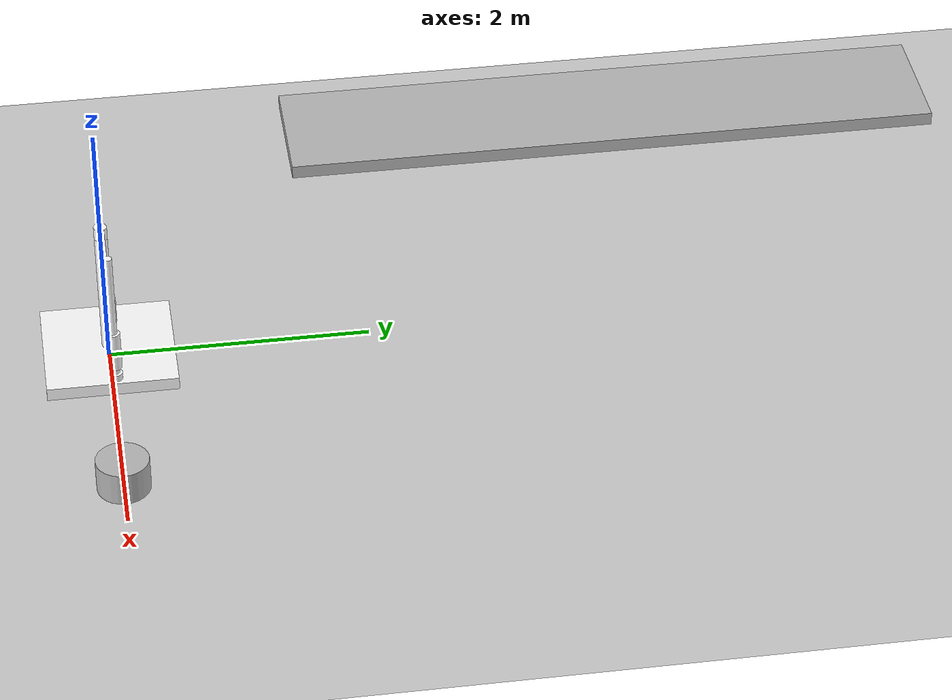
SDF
<sdf version="1.5">
 <world name="default">
  <include><uri>model://sun</uri></include>
  <include><uri>model://ground_plane</uri></include>
  <include><uri>model://simple_arm_vacuum_gripper</uri></include>
  <include><uri>model://conveyor_belt</uri><pose>-1.0 1.5 1.2 0 0 0</pose></include>
  <model name="cylinder">
   <pose>1.6 0 0 0 0 0</pose>
   <link name="base">
    <inertial>
     <inertia><ixx>0.003083</ixx><ixy>0</ixy><ixz>0</ixz><iyy>0.003083</iyy><iyz>0</iyz><izz>0.002</izz></inertia>
     <mass>0.1</mass>
    </inertial>
    <visual name="cylinder_visual">
     <geometry><cylinder><radius>0.2</radius><length>0.5</length></cylinder></geometry>
    </visual>
    <collision name="cylinder_collision">
     <geometry><cylinder><radius>0.2</radius><length>0.5</length></cylinder></geometry>
    </collision>
   </link>
  </model>
  <plugin filename="libPopulationPlugin.so" name="populate_conveyor">
   <loop_forever>true</loop_forever>
   <frame>conveyor_belt</frame>
   <object_sequence>
    <object><time>8.0</time><type>coke_can</type><pose>0.2 2.1 0.5 0 0 0</pose></object>
    <object><time>4.0</time><type>cordless_drill/</type><pose>-0.2 .1 0.5 0 0 1</pose></object>
    <object><time>12.0</time><type>beer</type><pose>0.2 2.1 0.5 0 0 0</pose></object>
   </object_sequence>
  </plugin>
  <plugin filename="libROSAriacTaskManagerPlugin.so" name="task_manager">
   <robot_namespace>ariac_task_manager</robot_namespace>
   <conveyor_activation_topic>~/conveyor/control</conveyor_activation_topic>
   <goals_topic>goals</goals_topic>
   <goal>
    <time>5.0</time>
    <kit>
     <object><type>coke_can</type><pose>0 2.5 0.2 0 0 0</pose></object>
     <object><type>cordless_drill/</type><pose>0 2.5 0.2 0 0 0</pose></object>
     <object><type>beer</type><pose>0 2.5 0.2 0 0 0</pose></object>
    </kit>
    <kit>
     <object><type>coke_can</type><pose>-1 2.5 0.2 0 0 0</pose></object>
     <object><type>cordless_drill/</type><pose>-1 2.5 0.2 0 0 0</pose></object>
     <object><type>beer</type><pose>-1 2.5 0.2 0 0 0</pose></object>
    </kit>
   </goal>
  </plugin>
 </world>
</sdf>

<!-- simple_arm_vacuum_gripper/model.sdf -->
<sdf version="1.5">
  <model name="simple_arm_vacuum_gripper">

      <!-- The arm -->
      <include>
        <uri>model://simple_arm</uri>
      </include>

      <!-- The vacuum gripper -->
      <model name="vacuum_gripper">
        <include>
          <uri>model://vacuum_gripper</uri>
          <pose>1.6 0 0.99 0 0 0</pose>
        </include>

        <!-- Load the plugin to control the vacuum gripper-->
        <plugin name="ros_vacuum_gripper" filename='libROSVacuumGripperPlugin.so'>
          <grasp_check>
            <detach_steps>40</detach_steps>
            <attach_steps>2</attach_steps>
            <min_contact_count>1</min_contact_count>
          </grasp_check>
          <suction_cup_link>
            simple_arm_vacuum_gripper::vacuum_gripper::vacuum_gripper::suction_cup
          </suction_cup_link>

          <!-- The gripper will drop the following objects -->
          <drops>
            <drop_region>
              <min>-10 -10 0</min>
              <max>10 10 2.5</max>
            </drop_region>

            <object>
              <type>beer</type>
              <destination>0 0 0.2 0 0 0</destination>
            </object>
          </drops>

          <!-- ROS -->
          <robot_namespace>vacuum_gripper</robot_namespace>
          <control_topic>vacuum_gripper_control</control_topic>
          <state_topic>vacuum_gripper_state</state_topic>
        </plugin>
      </model>

      <!-- Attach the gripper to the arm -->
      <joint name="arm_gripper_joint" type="revolute">
        <parent>simple_arm::arm_wrist_roll</parent>
        <child>vacuum_gripper::suction_cup</child>
        <axis>
          <limit>
            <lower>0</lower>
            <upper>0</upper>
          </limit>
          <xyz>0 0 1</xyz>
          <use_parent_model_frame>true</use_parent_model_frame>
        </axis>
      </joint>

    </model>
</sdf>

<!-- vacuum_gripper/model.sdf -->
<sdf version="1.6">
  <model name="vacuum_gripper">
    <static>true</static>

    <plugin
      filename="VacuumGripper" name="vacuum_gripper::VacuumGripper">
      <link_name>link6</link_name>
    </plugin>
  </model>
</sdf>

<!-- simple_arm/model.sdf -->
<sdf version="1.5">
  <model name="simple_arm">
    <link name="arm_base">
      <inertial>
        <pose>0 0 0.00099 0 0 0</pose>
        <inertia>
          <ixx>1.11</ixx>
          <ixy>0</ixy>
          <ixz>0</ixz>
          <iyy>100.11</iyy>
          <iyz>0</iyz>
          <izz>1.01</izz>
        </inertia>
        <mass>101.0</mass>
      </inertial>
      <collision name="arm_base_geom">
        <pose>0 0 0.05 0 0 0</pose>
        <geometry>
          <box>
            <size>1.0 1.0 0.1</size>
          </box>
        </geometry>
      </collision>
      <visual name="arm_base_geom_visual">
        <pose>0 0 0.05 0 0 0</pose>
        <geometry>
          <box>
            <size>1.0 1.0 0.1</size>
          </box>
        </geometry>
        <material><diffuse>1 1 1 1</diffuse><specular>0.1 0.1 0.1 1</specular></material>
      </visual>
      <collision name="arm_base_geom_arm_trunk">
        <pose>0 0 0.6 0 0 0</pose>
        <geometry>
          <cylinder>
            <radius>0.05</radius>
            <length>1.0</length>
          </cylinder>
        </geometry>
      </collision>
      <visual name="arm_base_geom_arm_trunk_visual">
        <pose>0 0 0.6 0 0 0</pose>
        <geometry>
          <cylinder>
            <radius>0.05</radius>
            <length>1.0</length>
          </cylinder>
        </geometry>
        <material><diffuse>1 1 1 1</diffuse><specular>0.1 0.1 0.1 1</specular></material>
      </visual>
    </link>
    <link name="arm_shoulder_pan">
      <pose>0 0 1.1 0 0 0</pose>
      <inertial>
        <pose>0.045455 0 0 0 0 0</pose>
        <inertia>
          <ixx>0.011</ixx>
          <ixy>0</ixy>
          <ixz>0</ixz>
          <iyy>0.0225</iyy>
          <iyz>0</iyz>
          <izz>0.0135</izz>
        </inertia>
        <mass>1.1</mass>
      </inertial>
      <collision name="arm_shoulder_pan_geom">
        <pose>0 0 0.05 0 0 0</pose>
        <geometry>
          <cylinder>
            <radius>0.05</radius>
            <length>0.1</length>
          </cylinder>
        </geometry>
      </collision>
      <visual name="arm_shoulder_pan_geom_visual">
        <pose>0 0 0.05 0 0 0</pose>
        <geometry>
          <cylinder>
            <radius>0.05</radius>
            <length>0.1</length>
          </cylinder>
        </geometry>
        <material><diffuse>1 1 1 1</diffuse><specular>0.1 0.1 0.1 1</specular></material>
      </visual>
      <collision name="arm_shoulder_pan_geom_arm_shoulder">
        <pose>0.55 0 0.05 0 0 0</pose>
        <geometry>
          <box>
            <size>1.0 0.05 0.1</size>
          </box>
        </geometry>
      </collision>
      <visual name="arm_shoulder_pan_geom_arm_shoulder_visual">
        <pose>0.55 0 0.05 0 0 0</pose>
        <geometry>
          <box>
            <size>1.0 0.05 0.1</size>
          </box>
        </geometry>
        <material><diffuse>1 1 1 1</diffuse><specular>0.1 0.1 0.1 1</specular></material>
      </visual>
    </link>
    <link name="arm_elbow_pan">
      <pose>1.05 0 1.1 0 0 0</pose>
      <inertial>
        <pose>0.0875 0 0.083333 0 0 0</pose>
        <inertia>
          <ixx>0.031</ixx>
          <ixy>0</ixy>
          <ixz>0.005</ixz>
          <iyy>0.07275</iyy>
          <iyz>0</iyz>
          <izz>0.04475</izz>
        </inertia>
        <mass>1.2</mass>
      </inertial>
      <collision name="arm_elbow_pan_geom">
        <pose>0 0 0.1 0 0 0</pose>
        <geometry>
          <cylinder>
            <radius>0.05</radius>
            <length>0.2</length>
          </cylinder>
        </geometry>
      </collision>
      <visual name="arm_elbow_pan_geom_visual">
        <pose>0 0 0.1 0 0 0</pose>
        <geometry>
          <cylinder>
            <radius>0.05</radius>
            <length>0.2</length>
          </cylinder>
        </geometry>
        <material><diffuse>1 1 1 1</diffuse><specular>0.1 0.1 0.1 1</specular></material>
      </visual>
      <collision name="arm_elbow_pan_geom_arm_elbow">
        <pose>0.3 0 0.15 0 0 0</pose>
        <geometry>
          <box>
            <size>0.5 0.03 0.1</size>
          </box>
        </geometry>
      </collision>
      <visual name="arm_elbow_pan_geom_arm_elbow_visual">
        <pose>0.3 0 0.15 0 0 0</pose>
        <geometry>
          <box>
            <size>0.5 0.03 0.1</size>
          </box>
        </geometry>
        <material><diffuse>1 1 1 1</diffuse><specular>0.1 0.1 0.1 1</specular></material>
      </visual>
      <collision name="arm_elbow_pan_geom_arm_wrist">
        <pose>0.55 0 0.15 0 0 0</pose>
        <geometry>
          <cylinder>
            <radius>0.05</radius>
            <length>0.3</length>
          </cylinder>
        </geometry>
      </collision>
      <visual name="arm_elbow_pan_geom_arm_wrist_visual">
        <pose>0.55 0 0.15 0 0 0</pose>
        <geometry>
          <cylinder>
            <radius>0.05</radius>
            <length>0.3</length>
          </cylinder>
        </geometry>
        <material><diffuse>1 1 1 1</diffuse><specular>0.1 0.1 0.1 1</specular></material>
      </visual>
    </link>
    <link name="arm_wrist_lift">
      <pose>1.6 0 1.05 0 0 0</pose>
      <inertial>
        <pose>0 0 0 0 0 0</pose>
        <inertia>
          <ixx>0.01</ixx>
          <ixy>0</ixy>
          <ixz>0</ixz>
          <iyy>0.01</iyy>
          <iyz>0</iyz>
          <izz>0.001</izz>
        </inertia>
        <mass>0.1</mass>
      </inertial>
      <collision name="arm_wrist_lift_geom">
        <pose>0 0 0.5 0 0 0</pose>
        <geometry>
          <cylinder>
            <radius>0.03</radius>
            <length>1.0</length>
          </cylinder>
        </geometry>
      </collision>
      <visual name="arm_wrist_lift_geom_visual">
        <pose>0 0 0.5 0 0 0</pose>
        <geometry>
          <cylinder>
            <radius>0.03</radius>
            <length>1.0</length>
          </cylinder>
        </geometry>
        <material><diffuse>1 1 1 1</diffuse><specular>0.1 0.1 0.1 1</specular></material>
      </visual>
    </link>
    <link name="arm_wrist_roll">
      <pose>1.6 0 1.0 0 0 0</pose>
      <inertial>
        <pose>0 0 0 0 0 0</pose>
        <inertia>
          <ixx>0.01</ixx>
          <ixy>0</ixy>
          <ixz>0</ixz>
          <iyy>0.01</iyy>
          <iyz>0</iyz>
          <izz>0.001</izz>
        </inertia>
        <mass>0.1</mass>
      </inertial>
      <collision name="arm_wrist_roll_geom">
        <pose>0 0 0.025 0 0 0</pose>
        <geometry>
          <cylinder>
            <radius>0.05</radius>
            <length>0.05</length>
          </cylinder>
        </geometry>
      </collision>
      <visual name="arm_wrist_roll_geom_visual">
        <pose>0 0 0.025 0 0 0</pose>
        <geometry>
          <cylinder>
            <radius>0.05</radius>
            <length>0.05</length>
          </cylinder>
        </geometry>
        <material><diffuse>1 1 1 1</diffuse><specular>0.1 0.1 0.1 1</specular></material>
      </visual>
    </link>
    <joint name="arm_shoulder_pan_joint" type="revolute">
      <parent>arm_base</parent>
      <child>arm_shoulder_pan</child>
      <axis>
        <dynamics>
          <damping>1.000000</damping>
          <friction>0.000000</friction>
        </dynamics>
        <xyz>0 0 1</xyz>
        <use_parent_model_frame>true</use_parent_model_frame>
      </axis>
    </joint>
    <joint name="arm_elbow_pan_joint" type="revolute">
      <parent>arm_shoulder_pan</parent>
      <child>arm_elbow_pan</child>
      <axis>
        <dynamics>
          <damping>1.000000</damping>
          <friction>0.000000</friction>
        </dynamics>
        <xyz>0 0 1</xyz>
        <use_parent_model_frame>true</use_parent_model_frame>
      </axis>
    </joint>
    <joint name="arm_wrist_lift_joint" type="prismatic">
      <parent>arm_elbow_pan</parent>
      <child>arm_wrist_lift</child>
      <axis>
        <dynamics>
          <damping>1.000000</damping>
          <friction>0.000000</friction>
        </dynamics>
        <limit>
          <lower>-0.8</lower>
          <upper>0.1</upper>
        </limit>
        <xyz>0 0 1</xyz>
        <use_parent_model_frame>true</use_parent_model_frame>
      </axis>
    </joint>
    <joint name="arm_wrist_roll_joint" type="revolute">
      <parent>arm_wrist_lift</parent>
      <child>arm_wrist_roll</child>
      <axis>
        <dynamics>
          <damping>1.000000</damping>
          <friction>0.000000</friction>
        </dynamics>
        <limit>
          <lower>-2.999994</lower>
          <upper>2.999994</upper>
        </limit>
        <xyz>0 0 1</xyz>
        <use_parent_model_frame>true</use_parent_model_frame>
      </axis>
    </joint>
  </model>
</sdf>

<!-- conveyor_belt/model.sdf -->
<sdf version="1.6">
    <!-- the origin of this model is at the middle of the 'top' of the belt -->
    <model name="conveyor_belt">
        <static>true</static>
        <link name="belt">
            <pose>0 2.5 0 0 0 0</pose>
            <sensor name='conveyor_belt_contact' type='contact'>
                <update_rate>10</update_rate>
                <contact>
                    <collision>belt_collision</collision>
                </contact>
                <plugin name="conveyor_belt_plugin" filename="libROSConveyorBeltPlugin.so">
                    <belt_velocity>0.2</belt_velocity>
                </plugin>
            </sensor>
            <inertial>
                <mass>10</mass>
                <inertia>
                    <ixx>20.841</ixx>
                    <ixy>0</ixy>
                    <ixz>0</ixz>
                    <iyy>0.8417</iyy>
                    <iyz>0</iyz>
                    <izz>21.66667</izz>
                </inertia>
            </inertial>
            <collision name="belt_collision">
            <geometry>
                <box>
                <size>1 5 0.1</size>
                </box>
            </geometry>
            <surface>
                <friction>
                    <ode>
                        <mu>0.0</mu>
                        <mu2>0.0</mu2>
                    </ode>
                    <torsional>
                        <coefficient>1000.0</coefficient>
                        <patch_radius>0.1</patch_radius>
                    </torsional>
                </friction>
            </surface>
            </collision>
            <visual name="visual">
            <geometry>
                <box>
                <size>1 5 0.1</size>
                </box>
            </geometry>
            </visual>
        </link>
    </model>
</sdf>
